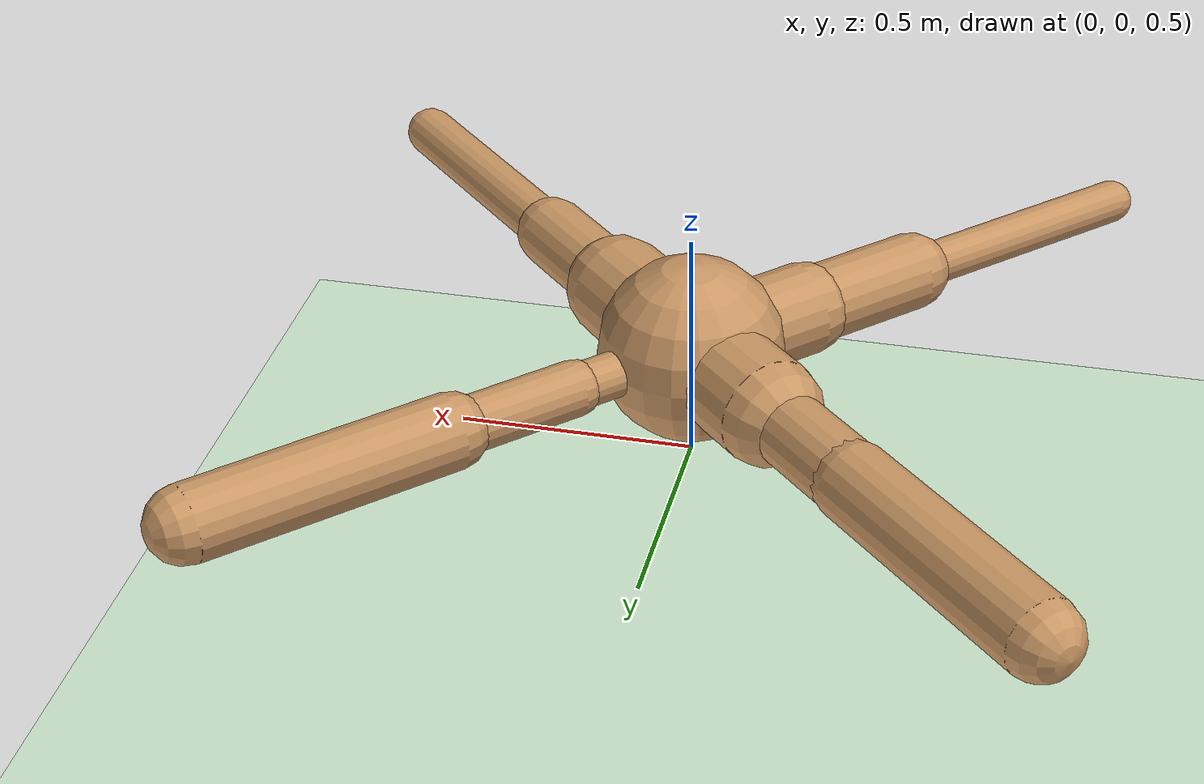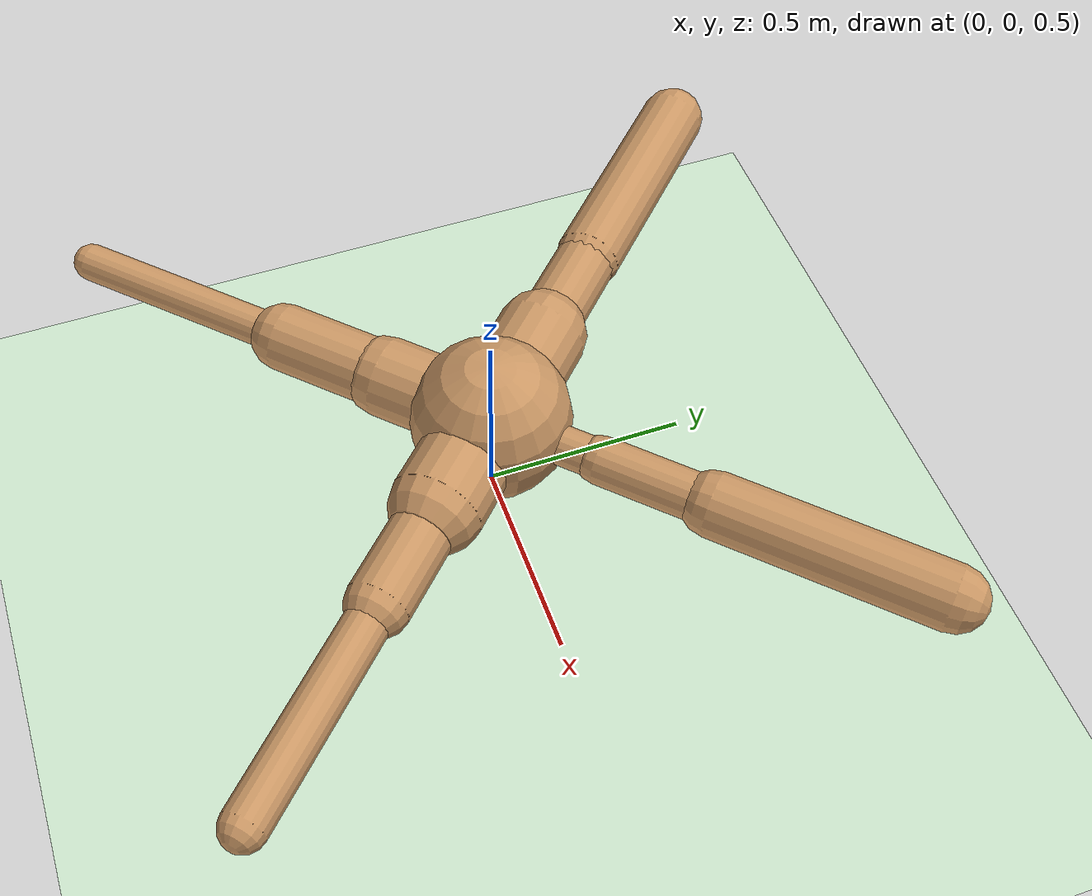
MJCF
<?xml version="1.0" encoding="utf-8"?>
<mujoco model="ant">
	<compiler angle="degree" coordinate="local" inertiafromgeom="true"></compiler>
	<option integrator="RK4" timestep="0.01"></option>
	<custom>
		<numeric data="0.0 0.0 0.55 1.0 0.0 0.0 0.0 0.0 1.0 0.0 -1.0 0.0 -1.0 0.0 1.0" name="init_qpos"></numeric>
	</custom>
	<default>
		<joint armature="1" damping="0.8123276972615865" limited="true"></joint>
		<geom conaffinity="0" condim="3" density="5.0" friction="1.132298959175356 0.507378015489828 0.3991630000662193" margin="0.01" rgba="0.8 0.6 0.4 1"></geom>
	</default>
	<asset>
		<texture builtin="gradient" height="100" rgb1="1 1 1" rgb2="0 0 0" type="skybox" width="100"></texture>
		<texture builtin="flat" height="1278" mark="cross" markrgb="1 1 1" name="texgeom" random="0.01" rgb1="0.8 0.6 0.4" rgb2="0.8 0.6 0.4" type="cube" width="127"></texture>
		<texture builtin="checker" height="100" name="texplane" rgb1="0 0 0" rgb2="0.8 0.8 0.8" type="2d" width="100"></texture>
		<material name="MatPlane" reflectance="0.5" shininess="1" specular="1" texrepeat="60 60" texture="texplane"></material>
		<material name="geom" texture="texgeom" texuniform="true"></material>
	</asset>
	<worldbody>
		<light cutoff="100" diffuse="1 1 1" dir="-0 0 -1.3" directional="true" exponent="1" pos="0 0 1.3" specular=".1 .1 .1"></light>
		<geom conaffinity="1" condim="3" material="MatPlane" name="floor" pos="0 0 0" rgba="0.8 0.9 0.8 1" size="47.50764601930114 37.7601961236684 42.33972790280868" type="plane"></geom>
		<body name="torso" pos="0 0 0.75">
			<camera name="track" mode="trackcom" pos="0 -3 0.3" xyaxes="1 0 0 0 0 1"></camera>
			<geom name="torso_geom" pos="0 0 0" size="0.19561809951898074" type="sphere"></geom>
			<joint armature="0" damping="0.0" limited="false" margin="0.01" name="root" pos="0 0 0" type="free"></joint>
			<body name="front_left_leg" pos="0 0 0">
				<geom fromto="0.0 0.0 0.0 0.2 0.2 0.0" name="aux_1_geom" size="0.048859748122423184" type="capsule"></geom>
				<body name="aux_1" pos="0.2 0.2 0">
					<joint axis="0 0 1" name="hip_1" pos="0.0 0.0 0.0" range="-30 30" type="hinge"></joint>
					<geom fromto="0.0 0.0 0.0 0.2 0.2 0.0" name="left_leg_geom" size="0.059072978113498716" type="capsule"></geom>
					<body pos="0.2 0.2 0">
						<joint axis="-1 1 0" name="ankle_1" pos="0.0 0.0 0.0" range="30 70" type="hinge"></joint>
						<geom fromto="0.0 0.0 0.0 0.4 0.4 0.0" name="left_ankle_geom" size="0.08022615902418784" type="capsule"></geom>
					</body>
				</body>
			</body>
			<body name="front_right_leg" pos="0 0 0">
				<geom fromto="0.0 0.0 0.0 -0.2 0.2 0.0" name="aux_2_geom" size="0.1137488984895198" type="capsule"></geom>
				<body name="aux_2" pos="-0.2 0.2 0">
					<joint axis="0 0 1" name="hip_2" pos="0.0 0.0 0.0" range="-30 30" type="hinge"></joint>
					<geom fromto="0.0 0.0 0.0 -0.2 0.2 0.0" name="right_leg_geom" size="0.0780933152431079" type="capsule"></geom>
					<body pos="-0.2 0.2 0">
						<joint axis="1 1 0" name="ankle_2" pos="0.0 0.0 0.0" range="-70 -30" type="hinge"></joint>
						<geom fromto="0.0 0.0 0.0 -0.4 0.4 0.0" name="right_ankle_geom" size="0.08333336906384464" type="capsule"></geom>
					</body>
				</body>
			</body>
			<body name="back_leg" pos="0 0 0">
				<geom fromto="0.0 0.0 0.0 -0.2 -0.2 0.0" name="aux_3_geom" size="0.09965455509467286" type="capsule"></geom>
				<body name="aux_3" pos="-0.2 -0.2 0">
					<joint axis="0 0 1" name="hip_3" pos="0.0 0.0 0.0" range="-30 30" type="hinge"></joint>
					<geom fromto="0.0 0.0 0.0 -0.2 -0.2 0.0" name="back_leg_geom" size="0.08398422057674" type="capsule"></geom>
					<body pos="-0.2 -0.2 0">
						<joint axis="-1 1 0" name="ankle_3" pos="0.0 0.0 0.0" range="-70 -30" type="hinge"></joint>
						<geom fromto="0.0 0.0 0.0 -0.4 -0.4 0.0" name="third_ankle_geom" size="0.047089984601856996" type="capsule"></geom>
					</body>
				</body>
			</body>
			<body name="right_back_leg" pos="0 0 0">
				<geom fromto="0.0 0.0 0.0 0.2 -0.2 0.0" name="aux_4_geom" size="0.11448805765919644" type="capsule"></geom>
				<body name="aux_4" pos="0.2 -0.2 0">
					<joint axis="0 0 1" name="hip_4" pos="0.0 0.0 0.0" range="-30 30" type="hinge"></joint>
					<geom fromto="0.0 0.0 0.0 0.2 -0.2 0.0" name="rightback_leg_geom" size="0.07833693249984214" type="capsule"></geom>
					<body pos="0.2 -0.2 0">
						<joint axis="1 1 0" name="ankle_4" pos="0.0 0.0 0.0" range="30 70" type="hinge"></joint>
						<geom fromto="0.0 0.0 0.0 0.4 -0.4 0.0" name="fourth_ankle_geom" size="0.05529244804541276" type="capsule"></geom>
					</body>
				</body>
			</body>
		</body>
	</worldbody>
	<actuator>
		<motor ctrllimited="true" ctrlrange="-1.0 1.0" joint="hip_4" gear="150"></motor>
		<motor ctrllimited="true" ctrlrange="-1.0 1.0" joint="ankle_4" gear="150"></motor>
		<motor ctrllimited="true" ctrlrange="-1.0 1.0" joint="hip_1" gear="150"></motor>
		<motor ctrllimited="true" ctrlrange="-1.0 1.0" joint="ankle_1" gear="150"></motor>
		<motor ctrllimited="true" ctrlrange="-1.0 1.0" joint="hip_2" gear="150"></motor>
		<motor ctrllimited="true" ctrlrange="-1.0 1.0" joint="ankle_2" gear="150"></motor>
		<motor ctrllimited="true" ctrlrange="-1.0 1.0" joint="hip_3" gear="150"></motor>
		<motor ctrllimited="true" ctrlrange="-1.0 1.0" joint="ankle_3" gear="150"></motor>
	</actuator>
</mujoco>
